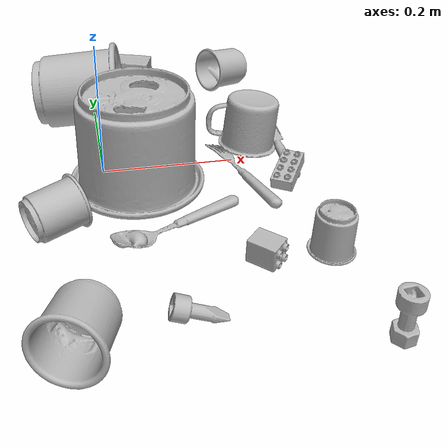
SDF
<sdf version="1.4">
  <world name="default">
    <light name="light1" type="point">
      <pose>0 0 1 0 0 0</pose>
      <diffuse>3 3 3 1</diffuse>
      <specular>3 3 3 1</specular>
    </light>
    <light name="light2" type="point">
      <pose>0 0.5 2 0 0 0</pose>
      <diffuse>1 1 1 1</diffuse>
      <specular>1 1 1 1</specular>
    </light>
    <light name="light3" type="point">
      <pose>0 0.5 2 0 0 0</pose>
      <diffuse>3 3 3 1</diffuse>
      <specular>3 3 3 1</specular>
    </light>
    <scene>
      <ambient>0.7 0.7 0.7</ambient>
    </scene>
    <model name="cup1">
      <link name="link_cup1">
        <collision name="default">
          <geometry>
            <mesh>
              <uri>model://e_cups/collision_meshes/collision.obj</uri>
              <scale>1.0 1.0 1.0</scale>
            </mesh>
          </geometry>
          <surface>
            <friction>
              <ode>
                <mu>0.5</mu>
                <mu2>0.5</mu2>
              </ode>
            </friction>
          <contact>
        <ode>
            <max_vel>0</max_vel>
            <min_depth>0.0001</min_depth>
            <kp>1e8</kp>
        </ode>
    </contact></surface>
        </collision>
        <visual name="default">
          <geometry>
            <mesh>
              <uri>model://e_cups/visual_meshes/visual.dae</uri>
              <scale>1.0 1.0 1.0</scale>
            </mesh>
          </geometry>
        </visual>
        <inertial>
          <mass>0.07679437845945358</mass>
          <pose>0.001135574304498732 0.002879783743992448 -0.0038829718250781298 0.6952411595659588 0.08767733322521654 -0.5235244631248706</pose>
          <inertia>
            <ixx>6.771342e-05</ixx>
            <iyy>7.077022e-05</iyy>
            <izz>6.4741864e-05</izz>
            <ixy>0</ixy>
            <ixz>0</ixz>
            <iyz>0</iyz>
          </inertia>
        </inertial>
      </link>
      <pose>-0.07044641673564911 -0.13767367601394653 0.03498337045311928 -1.4420155281905662 0.8511406694681396 -1.020986096610197</pose>
    </model>
    <model name="silverware1">
      <link name="link_silverware1">
        <collision name="default">
          <geometry>
            <mesh>
              <uri>model://spoon/collision_meshes/collision.obj</uri>
              <scale>1.0 1.0 1.0</scale>
            </mesh>
          </geometry>
          <surface>
            <friction>
              <ode>
                <mu>0.5</mu>
                <mu2>0.5</mu2>
              </ode>
            </friction>
          <contact>
        <ode>
            <max_vel>0</max_vel>
            <min_depth>0.0001</min_depth>
            <kp>1e8</kp>
        </ode>
    </contact></surface>
        </collision>
        <visual name="default">
          <geometry>
            <mesh>
              <uri>model://spoon/visual_meshes/visual.dae</uri>
              <scale>1.0 1.0 1.0</scale>
            </mesh>
          </geometry>
        </visual>
        <inertial>
          <mass>0.015083584003150463</mass>
          <pose>-0.005526313092559576 -0.001603418029844761 -0.000727165665011853 0.035216710638299134 -0.03906584880684835 0.006150613179751253</pose>
          <inertia>
            <ixx>8.389734e-07</ixx>
            <iyy>5.739254e-05</iyy>
            <izz>5.7806283e-05</izz>
            <ixy>0</ixy>
            <ixz>0</ixz>
            <iyz>0</iyz>
          </inertia>
        </inertial>
      </link>
      <pose>0.0873565822839737 -0.15647535026073456 0.00838525965809822 0.006728987149704324 0.02689298950762291 -2.752141684864724</pose>
    </model>
    <model name="cup2">
      <link name="link_cup2">
        <collision name="default">
          <geometry>
            <mesh>
              <uri>model://g_cups/collision_meshes/collision.obj</uri>
              <scale>1.0 1.0 1.0</scale>
            </mesh>
          </geometry>
          <surface>
            <friction>
              <ode>
                <mu>0.5</mu>
                <mu2>0.5</mu2>
              </ode>
            </friction>
          <contact>
        <ode>
            <max_vel>0</max_vel>
            <min_depth>0.0001</min_depth>
            <kp>1e8</kp>
        </ode>
    </contact></surface>
        </collision>
        <visual name="default">
          <geometry>
            <mesh>
              <uri>model://g_cups/visual_meshes/visual.dae</uri>
              <scale>1.0 1.0 1.0</scale>
            </mesh>
          </geometry>
        </visual>
        <inertial>
          <mass>0.04187431186437607</mass>
          <pose>-0.0007946277037262917 -4.2064348235726357e-05 -0.0021329382434487343 -0.21382305588888167 -0.31410659578681893 0.31120215507532384</pose>
          <inertia>
            <ixx>4.8876722e-05</ixx>
            <iyy>4.871046e-05</iyy>
            <izz>5.0627856e-05</izz>
            <ixy>0</ixy>
            <ixz>0</ixz>
            <iyz>0</iyz>
          </inertia>
        </inertial>
      </link>
      <pose>-0.04766063764691353 -0.34893086552619934 0.040195077657699585 1.4576268237906562 -0.36311662301929176 -0.3408986634253557</pose>
    </model>
    <model name="silverware2">
      <link name="link_silverware2">
        <collision name="default">
          <geometry>
            <mesh>
              <uri>model://fork/collision_meshes/collision.obj</uri>
              <scale>1.0 1.0 1.0</scale>
            </mesh>
          </geometry>
          <surface>
            <friction>
              <ode>
                <mu>0.5</mu>
                <mu2>0.5</mu2>
              </ode>
            </friction>
          <contact>
        <ode>
            <max_vel>0</max_vel>
            <min_depth>0.0001</min_depth>
            <kp>1e8</kp>
        </ode>
    </contact></surface>
        </collision>
        <visual name="default">
          <geometry>
            <mesh>
              <uri>model://fork/visual_meshes/visual.dae</uri>
              <scale>1.0 1.0 1.0</scale>
            </mesh>
          </geometry>
        </visual>
        <inertial>
          <mass>0.025364622473716736</mass>
          <pose>-0.029570050537586212 0.00046588227269239724 0.00032188615296036005 -0.013551666838441594 -0.010977837199147297 0.014453899745261501</pose>
          <inertia>
            <ixx>8.8917335e-07</ixx>
            <iyy>6.621973e-05</iyy>
            <izz>6.661743e-05</izz>
            <ixy>0</ixy>
            <ixz>0</ixz>
            <iyz>0</iyz>
          </inertia>
        </inertial>
      </link>
      <pose>0.20378030836582184 -0.04764772951602936 0.00853004027158022 -2.822912921169405 -0.008805978779259975 1.8389496879416178</pose>
    </model>
    <model name="cup3">
      <link name="link_cup3">
        <collision name="default">
          <geometry>
            <mesh>
              <uri>model://f_cups/collision_meshes/collision.obj</uri>
              <scale>1.0 1.0 1.0</scale>
            </mesh>
          </geometry>
          <surface>
            <friction>
              <ode>
                <mu>0.5</mu>
                <mu2>0.5</mu2>
              </ode>
            </friction>
          <contact>
        <ode>
            <max_vel>0</max_vel>
            <min_depth>0.0001</min_depth>
            <kp>1e8</kp>
        </ode>
    </contact></surface>
        </collision>
        <visual name="default">
          <geometry>
            <mesh>
              <uri>model://f_cups/visual_meshes/visual.dae</uri>
              <scale>1.0 1.0 1.0</scale>
            </mesh>
          </geometry>
        </visual>
        <inertial>
          <mass>0.08338716626167297</mass>
          <pose>-0.0031714679207652807 -0.0006240069633349776 -0.003655536798760295 0.7862348245142414 -0.2607950949044878 -0.18237232658982702</pose>
          <inertia>
            <ixx>7.838616e-05</ixx>
            <iyy>8.222797e-05</iyy>
            <izz>8.560161e-05</izz>
            <ixy>0</ixy>
            <ixz>0</ixz>
            <iyz>0</iyz>
          </inertia>
        </inertial>
      </link>
      <pose>0.25302010774612427 0.27870994806289673 0.03703070804476738 1.3151751559957652 -1.1784384963866428 -0.8985930699956368</pose>
    </model>
    <model name="silverware3">
      <link name="link_silverware3">
        <collision name="default">
          <geometry>
            <mesh>
              <uri>model://knife/collision_meshes/collision.obj</uri>
              <scale>1.0 1.0 1.0</scale>
            </mesh>
          </geometry>
          <surface>
            <friction>
              <ode>
                <mu>0.5</mu>
                <mu2>0.5</mu2>
              </ode>
            </friction>
          <contact>
        <ode>
            <max_vel>0</max_vel>
            <min_depth>0.0001</min_depth>
            <kp>1e8</kp>
        </ode>
    </contact></surface>
        </collision>
        <visual name="default">
          <geometry>
            <mesh>
              <uri>model://knife/visual_meshes/visual.dae</uri>
              <scale>1.0 1.0 1.0</scale>
            </mesh>
          </geometry>
        </visual>
        <inertial>
          <mass>0.015509607270359993</mass>
          <pose>-0.02378525398671627 0.0015275129117071629 5.0620248657651246e-05 0.07305981518176793 0.01724841487141605 -0.0074098192082968535</pose>
          <inertia>
            <ixx>4.4022548e-07</ixx>
            <iyy>5.95854e-05</iyy>
            <izz>5.9727172e-05</izz>
            <ixy>0</ixy>
            <ixz>0</ixz>
            <iyz>0</iyz>
          </inertia>
        </inertial>
      </link>
      <pose>0.2856137156486511 0.03146596997976303 0.008789886720478535 0.006952904932730548 -0.023930259907517456 1.5120765289742883</pose>
    </model>
    <model name="cup4">
      <link name="link_cup4">
        <collision name="default">
          <geometry>
            <mesh>
              <uri>model://d_cups/collision_meshes/collision.obj</uri>
              <scale>2.0 2.0 2.0</scale>
            </mesh>
          </geometry>
          <surface>
            <friction>
              <ode>
                <mu>0.5</mu>
                <mu2>0.5</mu2>
              </ode>
            </friction>
          <contact>
        <ode>
            <max_vel>0</max_vel>
            <min_depth>0.0001</min_depth>
            <kp>1e8</kp>
        </ode>
    </contact></surface>
        </collision>
        <visual name="default">
          <geometry>
            <mesh>
              <uri>model://d_cups/visual_meshes/visual.dae</uri>
              <scale>2.0 2.0 2.0</scale>
            </mesh>
          </geometry>
        </visual>
        <inertial>
          <mass>0.5481204390525818</mass>
          <pose>0.001613611588254571 0.0038234798703342676 -0.0045333015732467175 0.2401214667218237 -0.2470996070340832 0.5942599316130982</pose>
          <inertia>
            <ixx>0.001835623</ixx>
            <iyy>0.0018303102</iyy>
            <izz>0.0016615508</izz>
            <ixy>0</ixy>
            <ixz>0</ixz>
            <iyz>0</iyz>
          </inertia>
        </inertial>
      </link>
      <pose>-0.022873327136039734 0.1668790578842163 0.06484325975179672 -1.4779367481903554 -0.006029963419659255 -1.7024571841379044</pose>
    </model>
    <model name="cup41">
      <link name="link_cup41">
        <collision name="default">
          <geometry>
            <mesh>
              <uri>model://b_cups/collision_meshes/collision.obj</uri>
              <scale>1.0 1.0 1.0</scale>
            </mesh>
          </geometry>
          <surface>
            <friction>
              <ode>
                <mu>0.5</mu>
                <mu2>0.5</mu2>
              </ode>
            </friction>
          <contact>
        <ode>
            <max_vel>0</max_vel>
            <min_depth>0.0001</min_depth>
            <kp>1e8</kp>
        </ode>
    </contact></surface>
        </collision>
        <visual name="default">
          <geometry>
            <mesh>
              <uri>model://b_cups/visual_meshes/visual.dae</uri>
              <scale>1.0 1.0 1.0</scale>
            </mesh>
          </geometry>
        </visual>
        <inertial>
          <mass>0.04462150111794472</mass>
          <pose>0.0005182005697861314 0.0018058601999655366 -0.0013381819007918239 0.11356336410280554 0.038725039404113405 -0.3456939711537357</pose>
          <inertia>
            <ixx>2.9207904e-05</ixx>
            <iyy>2.8653376e-05</iyy>
            <izz>2.45779e-05</izz>
            <ixy>0</ixy>
            <ixz>0</ixz>
            <iyz>0</iyz>
          </inertia>
        </inertial>
      </link>
      <pose>0.26782360672950745 -0.23573699593544006 0.03215453773736954 3.1415099472591086 3.7481045142565354e-05 1.1755385144273929</pose>
    </model>
    <model name="cup5">
      <link name="link_cup5">
        <collision name="default">
          <geometry>
            <mesh>
              <uri>model://i_cups/collision_meshes/collision.obj</uri>
              <scale>2.0 2.0 2.0</scale>
            </mesh>
          </geometry>
          <surface>
            <friction>
              <ode>
                <mu>0.5</mu>
                <mu2>0.5</mu2>
              </ode>
            </friction>
          <contact>
        <ode>
            <max_vel>0</max_vel>
            <min_depth>0.0001</min_depth>
            <kp>1e8</kp>
        </ode>
    </contact></surface>
        </collision>
        <visual name="default">
          <geometry>
            <mesh>
              <uri>model://i_cups/visual_meshes/visual.dae</uri>
              <scale>2.0 2.0 2.0</scale>
            </mesh>
          </geometry>
        </visual>
        <inertial>
          <mass>0.7183689475059509</mass>
          <pose>0.00022480347251985222 0.0003359461552463472 -0.0017158043337985873 -0.028983189607302198 -0.03987301698166741 -0.34590760218104494</pose>
          <inertia>
            <ixx>0.0039783698</ixx>
            <iyy>0.004013422</iyy>
            <izz>0.0044464725</izz>
            <ixy>0</ixy>
            <ixz>0</ixz>
            <iyz>0</iyz>
          </inertia>
        </inertial>
      </link>
      <pose>0.0482957661151886 -0.03615429997444153 0.07586606591939926 3.141592546255561 -1.877621830826095e-07 1.502733578538145</pose>
    </model>
    <model name="cup51">
      <link name="link_cup51">
        <collision name="default">
          <geometry>
            <mesh>
              <uri>model://mug/collision_meshes/collision.obj</uri>
              <scale>1.0 1.0 1.0</scale>
            </mesh>
          </geometry>
          <surface>
            <friction>
              <ode>
                <mu>0.5</mu>
                <mu2>0.5</mu2>
              </ode>
            </friction>
          <contact>
        <ode>
            <max_vel>0</max_vel>
            <min_depth>0.0001</min_depth>
            <kp>1e8</kp>
        </ode>
    </contact></surface>
        </collision>
        <visual name="default">
          <geometry>
            <mesh>
              <uri>model://mug/visual_meshes/visual.dae</uri>
              <scale>1.0 1.0 1.0</scale>
            </mesh>
          </geometry>
        </visual>
        <inertial>
          <mass>0.1239403635263443</mass>
          <pose>0.009571672417223454 0.0008143244776874781 -0.01094733364880085 -0.12983126758676797 0.08737752450174939 0.055073145905888306</pose>
          <inertia>
            <ixx>0.0001231125</ixx>
            <iyy>0.00013750937</iyy>
            <izz>0.00015903146</izz>
            <ixy>0</ixy>
            <ixz>0</ixz>
            <iyz>0</iyz>
          </inertia>
        </inertial>
      </link>
      <pose>0.2269577980041504 0.039406441152095795 0.04575730115175247 3.1020828523595414 0.07961160013499544 -0.1713582184016888</pose>
    </model>
    <model name="toy1">
      <link name="link_toy1">
        <collision name="default">
          <geometry>
            <mesh>
              <uri>model://e_toy_airplane/collision_meshes/collision.obj</uri>
              <scale>1.0 1.0 1.0</scale>
            </mesh>
          </geometry>
          <surface>
            <friction>
              <ode>
                <mu>0.5</mu>
                <mu2>0.5</mu2>
              </ode>
            </friction>
          <contact>
        <ode>
            <max_vel>0</max_vel>
            <min_depth>0.0001</min_depth>
            <kp>1e8</kp>
        </ode>
    </contact></surface>
        </collision>
        <visual name="default">
          <geometry>
            <mesh>
              <uri>model://e_toy_airplane/visual_meshes/visual.dae</uri>
              <scale>1.0 1.0 1.0</scale>
            </mesh>
          </geometry>
        </visual>
        <inertial>
          <mass>0.022831259295344353</mass>
          <pose>0.00011740475019905716 -2.2482799977296963e-05 -0.011187204159796238 0.005518483498250157 0.009228324176637706 0.15041338923558414</pose>
          <inertia>
            <ixx>6.9683606e-06</ixx>
            <iyy>6.897077e-06</iyy>
            <izz>2.0942666e-06</izz>
            <ixy>0</ixy>
            <ixz>0</ixz>
            <iyz>0</iyz>
          </inertia>
        </inertial>
      </link>
      <pose>0.08233972638845444 -0.3203181028366089 0.010332432575523853 2.425657598269159 -1.1977892785622195 0.5911652252911733</pose>
    </model>
    <model name="toy2">
      <link name="link_toy2">
        <collision name="default">
          <geometry>
            <mesh>
              <uri>model://c_toy_airplane/collision_meshes/collision.obj</uri>
              <scale>1.0 1.0 1.0</scale>
            </mesh>
          </geometry>
          <surface>
            <friction>
              <ode>
                <mu>0.5</mu>
                <mu2>0.5</mu2>
              </ode>
            </friction>
          <contact>
        <ode>
            <max_vel>0</max_vel>
            <min_depth>0.0001</min_depth>
            <kp>1e8</kp>
        </ode>
    </contact></surface>
        </collision>
        <visual name="default">
          <geometry>
            <mesh>
              <uri>model://c_toy_airplane/visual_meshes/visual.dae</uri>
              <scale>1.0 1.0 1.0</scale>
            </mesh>
          </geometry>
        </visual>
        <inertial>
          <mass>0.014964861795306206</mass>
          <pose>-0.00023024252732284367 -4.4292315237726143e-07 -0.006080531980842352 -0.006193085961310731 -0.016797608001683555 0.7655123908688324</pose>
          <inertia>
            <ixx>6.871557e-06</ixx>
            <iyy>6.852165e-06</iyy>
            <izz>1.6133057e-06</izz>
            <ixy>0</ixy>
            <ixz>0</ixz>
            <iyz>0</iyz>
          </inertia>
        </inertial>
      </link>
      <pose>0.28507572412490845 -0.3854033350944519 0.03344091773033142 3.1279708931783676 -0.00920619189012878 0.942015622067369</pose>
    </model>
    <model name="toy3">
      <link name="link_toy3">
        <collision name="default">
          <geometry>
            <mesh>
              <uri>model://c_lego_duplo/collision_meshes/collision.obj</uri>
              <scale>1.0 1.0 1.0</scale>
            </mesh>
          </geometry>
          <surface>
            <friction>
              <ode>
                <mu>0.5</mu>
                <mu2>0.5</mu2>
              </ode>
            </friction>
          <contact>
        <ode>
            <max_vel>0</max_vel>
            <min_depth>0.0001</min_depth>
            <kp>1e8</kp>
        </ode>
    </contact></surface>
        </collision>
        <visual name="default">
          <geometry>
            <mesh>
              <uri>model://c_lego_duplo/visual_meshes/visual.dae</uri>
              <scale>1.0 1.0 1.0</scale>
            </mesh>
          </geometry>
        </visual>
        <inertial>
          <mass>0.043811071664094925</mass>
          <pose>0.00031645968556404114 0.00019464633078314364 0.0010453150607645512 -0.011520790971684333 0.005900079198968262 0.031100329952374963</pose>
          <inertia>
            <ixx>1.685932e-05</ixx>
            <iyy>5.3854724e-06</iyy>
            <izz>1.970185e-05</izz>
            <ixy>0</ixy>
            <ixz>0</ixz>
            <iyz>0</iyz>
          </inertia>
        </inertial>
      </link>
      <pose>0.26548779010772705 -0.07201410084962845 0.020366281270980835 -0.272243167804058 0.049839973004604986 2.486170547585732</pose>
    </model>
    <model name="toy4">
      <link name="link_toy4">
        <collision name="default">
          <geometry>
            <mesh>
              <uri>model://foam_brick/collision_meshes/collision.obj</uri>
              <scale>1.0 1.0 1.0</scale>
            </mesh>
          </geometry>
          <surface>
            <friction>
              <ode>
                <mu>0.5</mu>
                <mu2>0.5</mu2>
              </ode>
            </friction>
          <contact>
        <ode>
            <max_vel>0</max_vel>
            <min_depth>0.0001</min_depth>
            <kp>1e8</kp>
        </ode>
    </contact></surface>
        </collision>
        <visual name="default">
          <geometry>
            <mesh>
              <uri>model://foam_brick/visual_meshes/visual.dae</uri>
              <scale>1.0 1.0 1.0</scale>
            </mesh>
          </geometry>
        </visual>
        <inertial>
          <mass>0.278400182723999</mass>
          <pose>-0.0002522472059354186 0.00034584358218126 -0.0002532101352699101 -0.2940175595239471 0.01727444673583901 -0.0007449899720057078</pose>
          <inertia>
            <ixx>0.00012161039</ixx>
            <iyy>0.00019415727</iyy>
            <izz>0.00019662478</izz>
            <ixy>0</ixy>
            <ixz>0</ixz>
            <iyz>0</iyz>
          </inertia>
        </inertial>
      </link>
      <pose>0.0780043974518776 0.3196568489074707 0.025496842339634895 3.1325083885463147 0.006607240069834875 -0.3325389080282351</pose>
    </model>
    <model name="toy5">
      <link name="link_toy5">
        <collision name="default">
          <geometry>
            <mesh>
              <uri>model://f_lego_duplo/collision_meshes/collision.obj</uri>
              <scale>1.0 1.0 1.0</scale>
            </mesh>
          </geometry>
          <surface>
            <friction>
              <ode>
                <mu>0.5</mu>
                <mu2>0.5</mu2>
              </ode>
            </friction>
          <contact>
        <ode>
            <max_vel>0</max_vel>
            <min_depth>0.0001</min_depth>
            <kp>1e8</kp>
        </ode>
    </contact></surface>
        </collision>
        <visual name="default">
          <geometry>
            <mesh>
              <uri>model://f_lego_duplo/visual_meshes/visual.dae</uri>
              <scale>1.0 1.0 1.0</scale>
            </mesh>
          </geometry>
        </visual>
        <inertial>
          <mass>0.033785246312618256</mass>
          <pose>2.369392132095527e-05 0.00013393175322562456 0.0018837875686585903 0.029838526741840128 -0.014425189077584645 -0.6756601169838921</pose>
          <inertia>
            <ixx>7.139008e-06</ixx>
            <iyy>7.202609e-06</iyy>
            <izz>6.1969613e-06</izz>
            <ixy>0</ixy>
            <ixz>0</ixz>
            <iyz>0</iyz>
          </inertia>
        </inertial>
      </link>
      <pose>0.1826125532388687 -0.23987369239330292 0.01650197058916092 -1.57079477463077 3.7303692721438205e-06 -2.3547428703467164</pose>
    </model>
  <physics type="ode">
      <max_contacts>50</max_contacts>
      <ode>
        <solver>
          <type>quick</type>
          <iters>75</iters>
        </solver>
        <constraints>
          <contact_max_correcting_vel>0</contact_max_correcting_vel>
          <contact_surface_layer>0</contact_surface_layer>
        </constraints>
      </ode>
    </physics></world>
</sdf>
